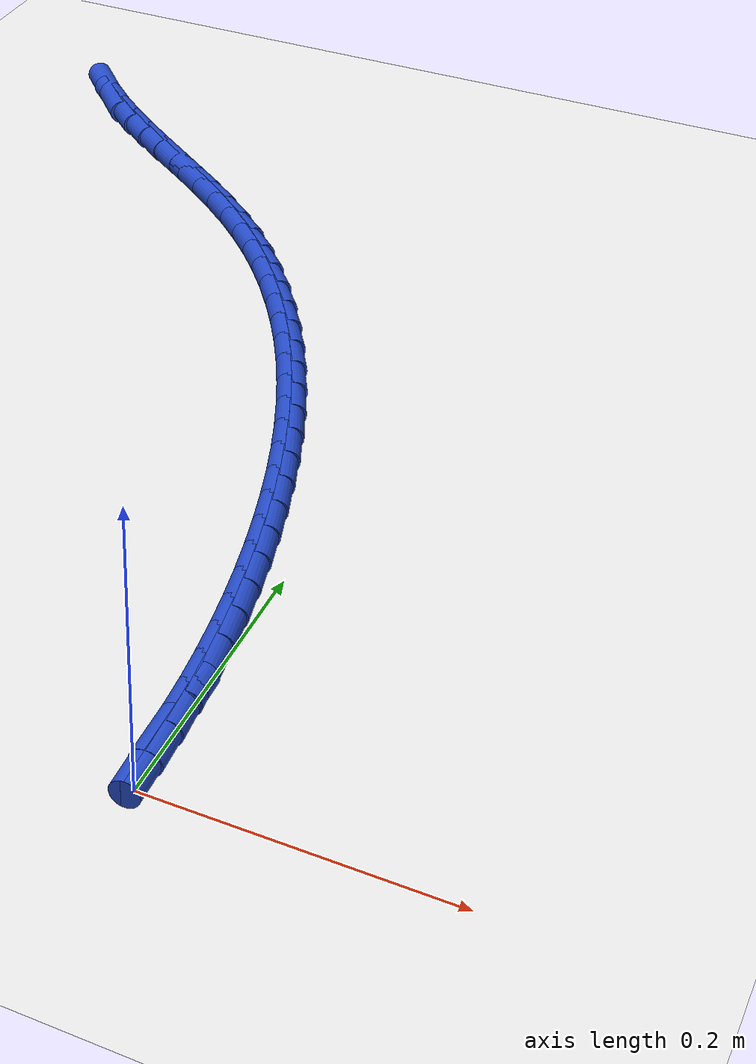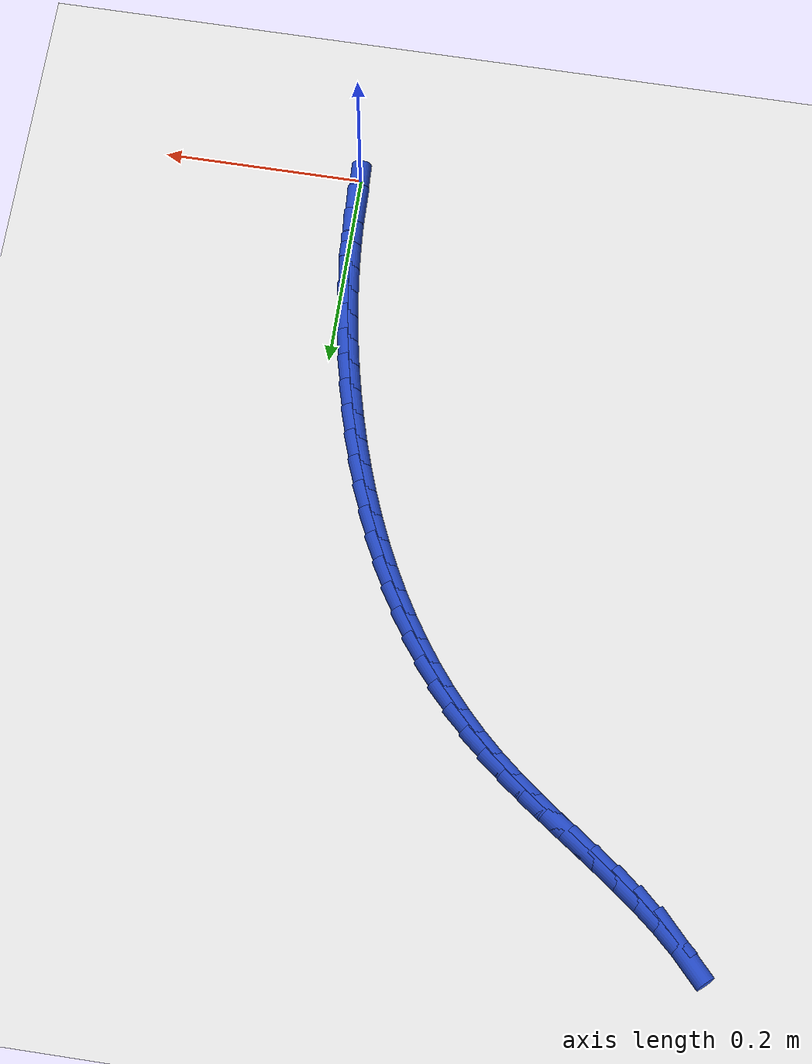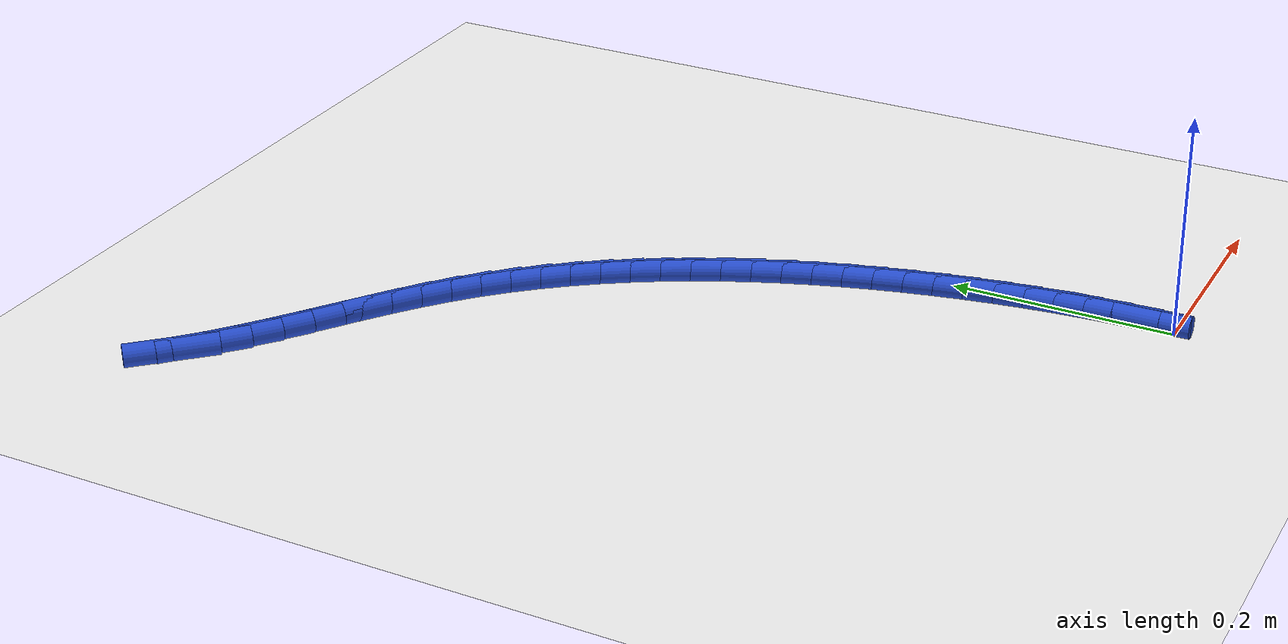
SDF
<sdf version="1.6">
 <world name="default">
  <model name="ground_plane">
   <static>1</static>
   <link name="link">
    <collision name="collision">
     <geometry><plane><normal>0 0 1</normal><size>100 100</size></plane></geometry>
     <surface><friction><ode><mu>100</mu><mu2>50</mu2></ode></friction></surface>
    </collision>
    <visual name="visual">
     <cast_shadows>0</cast_shadows>
     <geometry><plane><normal>0 0 1</normal><size>100 100</size></plane></geometry>
     <material>
      <script><uri>file://media/materials/scripts/gazebo.material</uri><name>Gazebo/WhiteGlow</name></script>
     </material>
    </visual>
   </link>
  </model>
  <model name="line">
   <link name="link_1">
    <pose>-0.00019707740323714366 0.026260759872894952 0.01 0 1.57 -1.5348100912403275</pose>
    <collision name="collision">
     <geometry><cylinder><radius>0.01</radius><length>0.08</length></cylinder></geometry>
    </collision>
    <visual name="visual">
     <material>
      <script><name>Gazebo/Blue</name><uri>file://media/materials/scripts/gazebo.material</uri></script>
     </material>
     <geometry><cylinder><radius>0.01</radius><length>0.08</length></cylinder></geometry>
    </visual>
   </link>
   <link name="link_2">
    <pose>-0.0011432870485328023 0.052543063242601565 0.01 0 1.57 -1.5065970498066714</pose>
    <collision name="collision">
     <geometry><cylinder><radius>0.01</radius><length>0.08</length></cylinder></geometry>
    </collision>
    <visual name="visual">
     <material>
      <script><name>Gazebo/Blue</name><uri>file://media/materials/scripts/gazebo.material</uri></script>
     </material>
     <geometry><cylinder><radius>0.01</radius><length>0.08</length></cylinder></geometry>
    </visual>
   </link>
   <link name="link_3">
    <pose>-0.0028335343778641726 0.07883501893921417 0.01 0 1.57 -1.4786571732701919</pose>
    <collision name="collision">
     <geometry><cylinder><radius>0.01</radius><length>0.08</length></cylinder></geometry>
    </collision>
    <visual name="visual">
     <material>
      <script><name>Gazebo/Blue</name><uri>file://media/materials/scripts/gazebo.material</uri></script>
     </material>
     <geometry><cylinder><radius>0.01</radius><length>0.08</length></cylinder></geometry>
    </visual>
   </link>
   <link name="link_4">
    <pose>-0.005262724833208455 0.105124735792827 0.01 0 1.57 -1.4509934167091272</pose>
    <collision name="collision">
     <geometry><cylinder><radius>0.01</radius><length>0.08</length></cylinder></geometry>
    </collision>
    <visual name="visual">
     <material>
      <script><name>Gazebo/Blue</name><uri>file://media/materials/scripts/gazebo.material</uri></script>
     </material>
     <geometry><cylinder><radius>0.01</radius><length>0.08</length></cylinder></geometry>
    </visual>
   </link>
   <link name="link_5">
    <pose>-0.00842576385654285 0.13140032263353443 0.01 0 1.57 -1.423607314683148</pose>
    <collision name="collision">
     <geometry><cylinder><radius>0.01</radius><length>0.08</length></cylinder></geometry>
    </collision>
    <visual name="visual">
     <material>
      <script><name>Gazebo/Blue</name><uri>file://media/materials/scripts/gazebo.material</uri></script>
     </material>
     <geometry><cylinder><radius>0.01</radius><length>0.08</length></cylinder></geometry>
    </visual>
   </link>
   <link name="link_6">
    <pose>-0.012317556889844556 0.15764988829143067 0.01 0 1.57 -1.3964990755157327</pose>
    <collision name="collision">
     <geometry><cylinder><radius>0.01</radius><length>0.08</length></cylinder></geometry>
    </collision>
    <visual name="visual">
     <material>
      <script><name>Gazebo/Blue</name><uri>file://media/materials/scripts/gazebo.material</uri></script>
     </material>
     <geometry><cylinder><radius>0.01</radius><length>0.08</length></cylinder></geometry>
    </visual>
   </link>
   <link name="link_7">
    <pose>-0.016933009375090766 0.18386154159661003 0.01 0 1.57 -1.3696676792484899</pose>
    <collision name="collision">
     <geometry><cylinder><radius>0.01</radius><length>0.08</length></cylinder></geometry>
    </collision>
    <visual name="visual">
     <material>
      <script><name>Gazebo/Blue</name><uri>file://media/materials/scripts/gazebo.material</uri></script>
     </material>
     <geometry><cylinder><radius>0.01</radius><length>0.08</length></cylinder></geometry>
    </visual>
   </link>
   <link name="link_8">
    <pose>-0.022267026754258682 0.21002339137916679 0.01 0 1.57 -1.3430749311705588</pose>
    <collision name="collision">
     <geometry><cylinder><radius>0.01</radius><length>0.08</length></cylinder></geometry>
    </collision>
    <visual name="visual">
     <material>
      <script><name>Gazebo/Blue</name><uri>file://media/materials/scripts/gazebo.material</uri></script>
     </material>
     <geometry><cylinder><radius>0.01</radius><length>0.08</length></cylinder></geometry>
    </visual>
   </link>
   <link name="link_9">
    <pose>-0.028315247651225908 0.23612243249978096 0.01 0 1.57 -1.3159479446725486</pose>
    <collision name="collision">
     <geometry><cylinder><radius>0.01</radius><length>0.08</length></cylinder></geometry>
    </collision>
    <visual name="visual">
     <material>
      <script><name>Gazebo/Blue</name><uri>file://media/materials/scripts/gazebo.material</uri></script>
     </material>
     <geometry><cylinder><radius>0.01</radius><length>0.08</length></cylinder></geometry>
    </visual>
   </link>
   <link name="link_10">
    <pose>-0.03508858656389403 0.2621224502221293 0.01 0 1.57 -1.287490120131343</pose>
    <collision name="collision">
     <geometry><cylinder><radius>0.01</radius><length>0.08</length></cylinder></geometry>
    </collision>
    <visual name="visual">
     <material>
      <script><name>Gazebo/Blue</name><uri>file://media/materials/scripts/gazebo.material</uri></script>
     </material>
     <geometry><cylinder><radius>0.01</radius><length>0.08</length></cylinder></geometry>
    </visual>
   </link>
   <link name="link_11">
    <pose>-0.042612400836581264 0.287965285884167 0.01 0 1.57 -1.2575686136234239</pose>
    <collision name="collision">
     <geometry><cylinder><radius>0.01</radius><length>0.08</length></cylinder></geometry>
    </collision>
    <visual name="visual">
     <material>
      <script><name>Gazebo/Blue</name><uri>file://media/materials/scripts/gazebo.material</uri></script>
     </material>
     <geometry><cylinder><radius>0.01</radius><length>0.08</length></cylinder></geometry>
    </visual>
   </link>
   <link name="link_12">
    <pose>-0.05091261422573993 0.3135919202382389 0.01 0 1.57 -1.2260781231189402</pose>
    <collision name="collision">
     <geometry><cylinder><radius>0.01</radius><length>0.08</length></cylinder></geometry>
    </collision>
    <visual name="visual">
     <material>
      <script><name>Gazebo/Blue</name><uri>file://media/materials/scripts/gazebo.material</uri></script>
     </material>
     <geometry><cylinder><radius>0.01</radius><length>0.08</length></cylinder></geometry>
    </visual>
   </link>
   <link name="link_13">
    <pose>-0.06001515048782225 0.3389433340366903 0.01 0 1.57 -1.1929145746544014</pose>
    <collision name="collision">
     <geometry><cylinder><radius>0.01</radius><length>0.08</length></cylinder></geometry>
    </collision>
    <visual name="visual">
     <material>
      <script><name>Gazebo/Blue</name><uri>file://media/materials/scripts/gazebo.material</uri></script>
     </material>
     <geometry><cylinder><radius>0.01</radius><length>0.08</length></cylinder></geometry>
    </visual>
   </link>
   <link name="link_14">
    <pose>-0.06994593337928051 0.36396050803186597 0.01 0 1.57 -1.1579772439037401</pose>
    <collision name="collision">
     <geometry><cylinder><radius>0.01</radius><length>0.08</length></cylinder></geometry>
    </collision>
    <visual name="visual">
     <material>
      <script><name>Gazebo/Blue</name><uri>file://media/materials/scripts/gazebo.material</uri></script>
     </material>
     <geometry><cylinder><radius>0.01</radius><length>0.08</length></cylinder></geometry>
    </visual>
   </link>
   <link name="link_15">
    <pose>-0.08073088665656702 0.3885844229761109 0.01 0 1.57 -1.1211715505549253</pose>
    <collision name="collision">
     <geometry><cylinder><radius>0.01</radius><length>0.08</length></cylinder></geometry>
    </collision>
    <visual name="visual">
     <material>
      <script><name>Gazebo/Blue</name><uri>file://media/materials/scripts/gazebo.material</uri></script>
     </material>
     <geometry><cylinder><radius>0.01</radius><length>0.08</length></cylinder></geometry>
    </visual>
   </link>
   <link name="link_16">
    <pose>-0.09239593407613399 0.41275605962177025 0.01 0 1.57 -1.0824125986927136</pose>
    <collision name="collision">
     <geometry><cylinder><radius>0.01</radius><length>0.08</length></cylinder></geometry>
    </collision>
    <visual name="visual">
     <material>
      <script><name>Gazebo/Blue</name><uri>file://media/materials/scripts/gazebo.material</uri></script>
     </material>
     <geometry><cylinder><radius>0.01</radius><length>0.08</length></cylinder></geometry>
    </visual>
   </link>
   <link name="link_17">
    <pose>-0.10496699939443374 0.436416398721189 0.01 0 1.57 -1.041629505000383</pose>
    <collision name="collision">
     <geometry><cylinder><radius>0.01</radius><length>0.08</length></cylinder></geometry>
    </collision>
    <visual name="visual">
     <material>
      <script><name>Gazebo/Blue</name><uri>file://media/materials/scripts/gazebo.material</uri></script>
     </material>
     <geometry><cylinder><radius>0.01</radius><length>0.08</length></cylinder></geometry>
    </visual>
   </link>
   <link name="link_18">
    <pose>-0.11847000636791846 0.4595064210267119 0.01 0 1.57 -0.9987705007700904</pose>
    <collision name="collision">
     <geometry><cylinder><radius>0.01</radius><length>0.08</length></cylinder></geometry>
    </collision>
    <visual name="visual">
     <material>
      <script><name>Gazebo/Blue</name><uri>file://media/materials/scripts/gazebo.material</uri></script>
     </material>
     <geometry><cylinder><radius>0.01</radius><length>0.08</length></cylinder></geometry>
    </visual>
   </link>
   <link name="link_19">
    <pose>-0.13293087875304055 0.4819671072906843 0.01 0 1.57 -0.9538087080306736</pose>
    <collision name="collision">
     <geometry><cylinder><radius>0.01</radius><length>0.08</length></cylinder></geometry>
    </collision>
    <visual name="visual">
     <material>
      <script><name>Gazebo/Blue</name><uri>file://media/materials/scripts/gazebo.material</uri></script>
     </material>
     <geometry><cylinder><radius>0.01</radius><length>0.08</length></cylinder></geometry>
    </visual>
   </link>
   <link name="link_20">
    <pose>-0.14837554030625222 0.5037394382654511 0.01 0 1.57 -0.9067483722386667</pose>
    <collision name="collision">
     <geometry><cylinder><radius>0.01</radius><length>0.08</length></cylinder></geometry>
    </collision>
    <visual name="visual">
     <material>
      <script><name>Gazebo/Blue</name><uri>file://media/materials/scripts/gazebo.material</uri></script>
     </material>
     <geometry><cylinder><radius>0.01</radius><length>0.08</length></cylinder></geometry>
    </visual>
   </link>
   <link name="link_21">
    <pose>-0.16482991478400572 0.5247643947033572 0.01 0 1.57 -0.8576311879347525</pose>
    <collision name="collision">
     <geometry><cylinder><radius>0.01</radius><length>0.08</length></cylinder></geometry>
    </collision>
    <visual name="visual">
     <material>
      <script><name>Gazebo/Blue</name><uri>file://media/materials/scripts/gazebo.material</uri></script>
     </material>
     <geometry><cylinder><radius>0.01</radius><length>0.08</length></cylinder></geometry>
    </visual>
   </link>
   <link name="link_22">
    <pose>-0.1823199259427533 0.5449829573567477 0.01 0 1.57 -0.8065421935312231</pose>
    <collision name="collision">
     <geometry><cylinder><radius>0.01</radius><length>0.08</length></cylinder></geometry>
    </collision>
    <visual name="visual">
     <material>
      <script><name>Gazebo/Blue</name><uri>file://media/materials/scripts/gazebo.material</uri></script>
     </material>
     <geometry><cylinder><radius>0.01</radius><length>0.08</length></cylinder></geometry>
    </visual>
   </link>
   <link name="link_23">
    <pose>-0.20087149753894729 0.5643361069779674 0.01 0 1.57 -0.753617153168695</pose>
    <collision name="collision">
     <geometry><cylinder><radius>0.01</radius><length>0.08</length></cylinder></geometry>
    </collision>
    <visual name="visual">
     <material>
      <script><name>Gazebo/Blue</name><uri>file://media/materials/scripts/gazebo.material</uri></script>
     </material>
     <geometry><cylinder><radius>0.01</radius><length>0.08</length></cylinder></geometry>
    </visual>
   </link>
   <link name="link_24">
    <pose>-0.22051050218696697 0.5827648719619772 0.01 0 1.57 -0.702441004706767</pose>
    <collision name="collision">
     <geometry><cylinder><radius>0.01</radius><length>0.08</length></cylinder></geometry>
    </collision>
    <visual name="visual">
     <material>
      <script><name>Gazebo/Blue</name><uri>file://media/materials/scripts/gazebo.material</uri></script>
     </material>
     <geometry><cylinder><radius>0.01</radius><length>0.08</length></cylinder></geometry>
    </visual>
   </link>
   <link name="link_25">
    <pose>-0.24119487580690083 0.600273568748473 0.01 0 1.57 -0.6630655062927479</pose>
    <collision name="collision">
     <geometry><cylinder><radius>0.01</radius><length>0.08</length></cylinder></geometry>
    </collision>
    <visual name="visual">
     <material>
      <script><name>Gazebo/Blue</name><uri>file://media/materials/scripts/gazebo.material</uri></script>
     </material>
     <geometry><cylinder><radius>0.01</radius><length>0.08</length></cylinder></geometry>
    </visual>
   </link>
   <link name="link_26">
    <pose>-0.2626806670416635 0.6170545866759398 0.01 0 1.57 -0.6369563342111731</pose>
    <collision name="collision">
     <geometry><cylinder><radius>0.01</radius><length>0.08</length></cylinder></geometry>
    </collision>
    <visual name="visual">
     <material>
      <script><name>Gazebo/Blue</name><uri>file://media/materials/scripts/gazebo.material</uri></script>
     </material>
     <geometry><cylinder><radius>0.01</radius><length>0.08</length></cylinder></geometry>
    </visual>
   </link>
   <link name="link_27">
    <pose>-0.28468659432093846 0.6333350909316083 0.01 0 1.57 -0.6237539647634536</pose>
    <collision name="collision">
     <geometry><cylinder><radius>0.01</radius><length>0.08</length></cylinder></geometry>
    </collision>
    <visual name="visual">
     <material>
      <script><name>Gazebo/Blue</name><uri>file://media/materials/scripts/gazebo.material</uri></script>
     </material>
     <geometry><cylinder><radius>0.01</radius><length>0.08</length></cylinder></geometry>
    </visual>
   </link>
   <link name="link_28">
    <pose>-0.3069313760744094 0.6493422467027092 0.01 0 1.57 -0.623289311417262</pose>
    <collision name="collision">
     <geometry><cylinder><radius>0.01</radius><length>0.08</length></cylinder></geometry>
    </collision>
    <visual name="visual">
     <material>
      <script><name>Gazebo/Blue</name><uri>file://media/materials/scripts/gazebo.material</uri></script>
     </material>
     <geometry><cylinder><radius>0.01</radius><length>0.08</length></cylinder></geometry>
    </visual>
   </link>
   <link name="link_29">
    <pose>-0.32913373073175983 0.6653032191764736 0.01 0 1.57 -0.6356440025285129</pose>
    <collision name="collision">
     <geometry><cylinder><radius>0.01</radius><length>0.08</length></cylinder></geometry>
    </collision>
    <visual name="visual">
     <material>
      <script><name>Gazebo/Blue</name><uri>file://media/materials/scripts/gazebo.material</uri></script>
     </material>
     <geometry><cylinder><radius>0.01</radius><length>0.08</length></cylinder></geometry>
    </visual>
   </link>
   <link name="link_30">
    <pose>-0.3510123767226733 0.6814451735401323 0.01 0 1.57 -0.6611581090499187</pose>
    <collision name="collision">
     <geometry><cylinder><radius>0.01</radius><length>0.08</length></cylinder></geometry>
    </collision>
    <visual name="visual">
     <material>
      <script><name>Gazebo/Blue</name><uri>file://media/materials/scripts/gazebo.material</uri></script>
     </material>
     <geometry><cylinder><radius>0.01</radius><length>0.08</length></cylinder></geometry>
    </visual>
   </link>
   <link name="link_31">
    <pose>-0.37228603247683356 0.697995274980916 0.01 0 1.57 -0.7003831370044646</pose>
    <collision name="collision">
     <geometry><cylinder><radius>0.01</radius><length>0.08</length></cylinder></geometry>
    </collision>
    <visual name="visual">
     <material>
      <script><name>Gazebo/Blue</name><uri>file://media/materials/scripts/gazebo.material</uri></script>
     </material>
     <geometry><cylinder><radius>0.01</radius><length>0.08</length></cylinder></geometry>
    </visual>
   </link>
   <link name="link_32">
    <pose>-0.39267341642392384 0.7151806886860556 0.01 0 1.57 -0.7539620228355137</pose>
    <collision name="collision">
     <geometry><cylinder><radius>0.01</radius><length>0.08</length></cylinder></geometry>
    </collision>
    <visual name="visual">
     <material>
      <script><name>Gazebo/Blue</name><uri>file://media/materials/scripts/gazebo.material</uri></script>
     </material>
     <geometry><cylinder><radius>0.01</radius><length>0.08</length></cylinder></geometry>
    </visual>
   </link>
   <link name="link_33">
    <pose>-0.41189324699362784 0.7332285798427817 0.01 0 1.57 -0.8224062552509539</pose>
    <collision name="collision">
     <geometry><cylinder><radius>0.01</radius><length>0.08</length></cylinder></geometry>
    </collision>
    <visual name="visual">
     <material>
      <script><name>Gazebo/Blue</name><uri>file://media/materials/scripts/gazebo.material</uri></script>
     </material>
     <geometry><cylinder><radius>0.01</radius><length>0.08</length></cylinder></geometry>
    </visual>
   </link>
   <link name="link_281">
    <pose>-0.00020376096006960442 0.02626470333436503 0.01 0 1.57 -1.5330720040080223</pose>
    <collision name="collision">
     <geometry><cylinder><radius>0.01</radius><length>0.08</length></cylinder></geometry>
    </collision>
    <visual name="visual">
     <material>
      <script><name>Gazebo/Blue</name><uri>file://media/materials/scripts/gazebo.material</uri></script>
     </material>
     <geometry><cylinder><radius>0.01</radius><length>0.08</length></cylinder></geometry>
    </visual>
   </link>
   <link name="link_282">
    <pose>-0.0011967555031925084 0.05257461093436147 0.01 0 1.57 -1.5480372641027116</pose>
    <collision name="collision">
     <geometry><cylinder><radius>0.01</radius><length>0.08</length></cylinder></geometry>
    </collision>
    <visual name="visual">
     <material>
      <script><name>Gazebo/Blue</name><uri>file://media/materials/scripts/gazebo.material</uri></script>
     </material>
     <geometry><cylinder><radius>0.01</radius><length>0.08</length></cylinder></geometry>
    </visual>
   </link>
  </model>
 </world>
</sdf>
